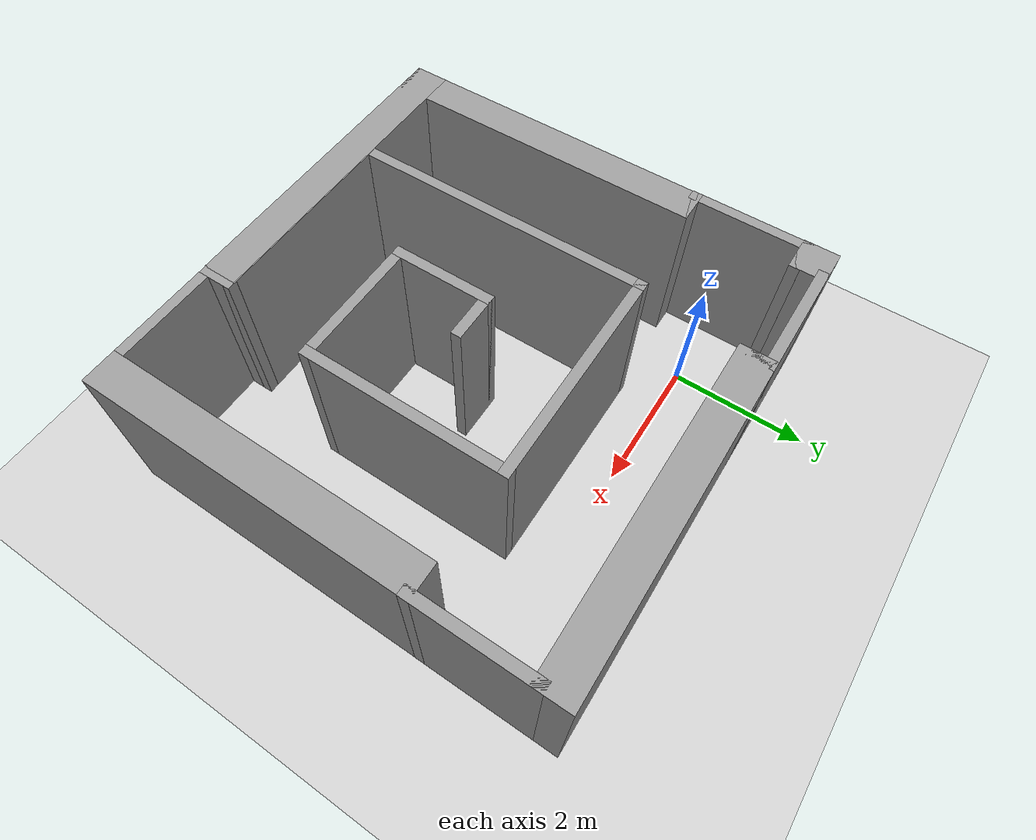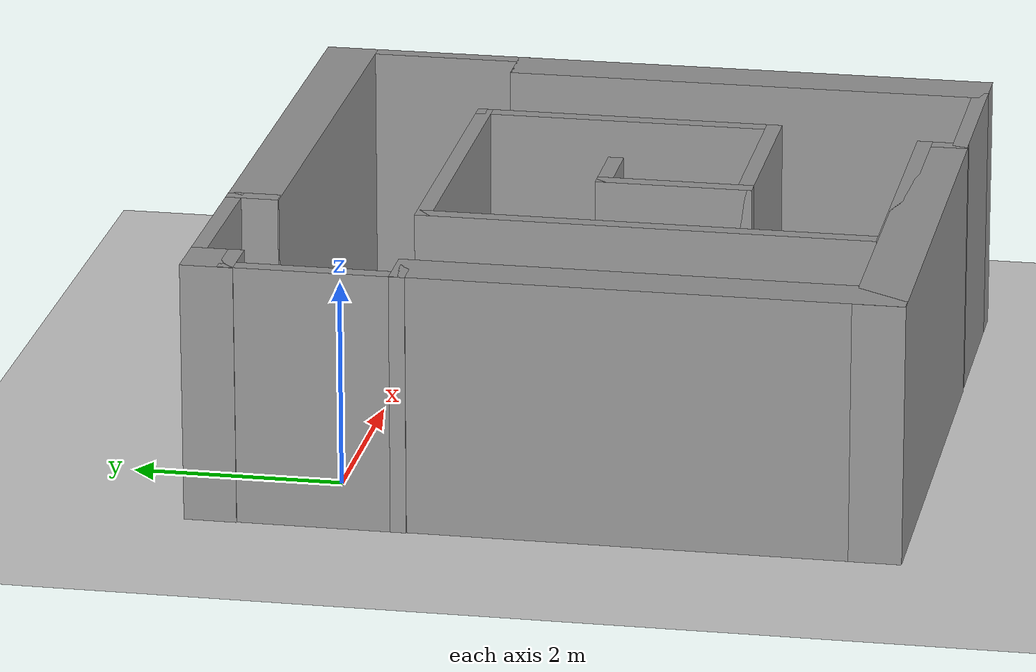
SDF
<sdf version="1.7">
 <world name="default">
  <scene><ambient>0.4 0.4 0.4 1</ambient><background>0.7 0.7 0.7 1</background><shadows>1</shadows></scene>
  <light name="sun" type="directional">
   <pose>0 0 10 0 -0 0</pose>
   <diffuse>0.8 0.8 0.8 1</diffuse>
   <specular>0.2 0.2 0.2 1</specular>
   <attenuation>
    <range>1000</range>
    <constant>0.9</constant>
    <linear>0.01</linear>
    <quadratic>0.001</quadratic>
   </attenuation>
   <direction>-0.5 0.1 -0.9</direction>
   <spot><inner_angle>0</inner_angle><outer_angle>0</outer_angle><falloff>0</falloff></spot>
  </light>
  <model name="ground_plane">
   <static>1</static>
   <link name="link">
    <collision name="collision">
     <geometry><plane><normal>0 0 1</normal><size>100 100</size></plane></geometry>
     <surface>
      <contact><collide_bitmask>65535</collide_bitmask></contact>
      <friction><ode><mu>100</mu><mu2>50</mu2></ode></friction>
     </surface>
    </collision>
    <visual name="visual">
     <cast_shadows>0</cast_shadows>
     <geometry><plane><normal>0 0 1</normal><size>100 100</size></plane></geometry>
     <material>
      <script><uri>file://media/materials/scripts/gazebo.material</uri><name>Gazebo/Grey</name></script>
     </material>
    </visual>
   </link>
  </model>
  <physics type="ode">
   <real_time_update_rate>0</real_time_update_rate>
   <max_step_size>0.001</max_step_size>
   <real_time_factor>1</real_time_factor>
   <ode>
    <solver>
     <type>quick</type>
     <iters>150</iters>
     <precon_iters>0</precon_iters>
     <sor>1.4</sor>
     <use_dynamic_moi_rescaling>1</use_dynamic_moi_rescaling>
    </solver>
    <constraints>
     <cfm>1e-05</cfm>
     <erp>0.2</erp>
     <contact_max_correcting_vel>2000</contact_max_correcting_vel>
     <contact_surface_layer>0.01</contact_surface_layer>
    </constraints>
   </ode>
  </physics>
  <gravity>0 0 -9.8</gravity>
  <magnetic_field>6e-06 2.3e-05 -4.2e-05</magnetic_field>
  <atmosphere type="adiabatic"/>
  <spherical_coordinates>
   <surface_model>EARTH_WGS84</surface_model>
   <latitude_deg>0</latitude_deg>
   <longitude_deg>0</longitude_deg>
   <elevation>0</elevation>
   <heading_deg>0</heading_deg>
  </spherical_coordinates>
  <audio><device>default</device></audio>
  <model name="world1_0">
   <link name="Wall_1">
    <pose>-3.0933 -2.29549 0 0 -0 1.5708</pose>
    <inertial>
     <inertia><ixx>0</ixx><ixy>0</ixy><ixz>0</ixz><iyy>0</iyy><iyz>0</iyz><izz>0</izz></inertia>
     <mass>0</mass>
    </inertial>
    <visual name="Wall_1_Visual">
     <pose>0 0 1.25 0 -0 0</pose>
     <geometry><box><size>4.75 0.494728 2.5</size></box></geometry>
     <material>
      <script><uri>file://media/materials/scripts/gazebo.material</uri><name>Gazebo/Grey</name></script>
      <ambient>1 1 1 1</ambient>
      <shader type="pixel"/>
     </material>
     <meta><layer>0</layer></meta>
    </visual>
    <collision name="Wall_1_Collision">
     <pose>0 0 1.25 0 -0 0</pose>
     <geometry><box><size>4.75 0.494728 2.5</size></box></geometry>
     <surface>
      <friction>
       <ode><mu>1</mu><mu2>1</mu2><fdir1>0 0 0</fdir1><slip1>0</slip1><slip2>0</slip2></ode>
       <torsional>
        <coefficient>1</coefficient>
        <patch_radius>0</patch_radius>
        <surface_radius>0</surface_radius>
        <use_patch_radius>1</use_patch_radius>
        <ode><slip>0</slip></ode>
       </torsional>
      </friction>
      <bounce><restitution_coefficient>0</restitution_coefficient><threshold>1e+06</threshold></bounce>
      <contact>
       <collide_without_contact>0</collide_without_contact>
       <collide_without_contact_bitmask>1</collide_without_contact_bitmask>
       <collide_bitmask>1</collide_bitmask>
       <ode>
        <soft_cfm>0</soft_cfm>
        <soft_erp>0.2</soft_erp>
        <kp>1e+13</kp>
        <kd>1</kd>
        <max_vel>0.01</max_vel>
        <min_depth>0</min_depth>
       </ode>
       <bullet>
        <split_impulse>1</split_impulse>
        <split_impulse_penetration_threshold>-0.01</split_impulse_penetration_threshold>
        <soft_cfm>0</soft_cfm>
        <soft_erp>0.2</soft_erp>
        <kp>1e+13</kp>
        <kd>1</kd>
       </bullet>
      </contact>
     </surface>
    </collision>
   </link>
   <link name="Wall_10">
    <pose>3.1 0.004509 0 0 -0 3.14159</pose>
    <visual name="Wall_10_Visual">
     <pose>0 0 1.25 0 -0 0</pose>
     <geometry><box><size>0.5 0.15 2.5</size></box></geometry>
     <material>
      <script><uri>file://media/materials/scripts/gazebo.material</uri><name>Gazebo/Grey</name></script>
      <ambient>1 1 1 1</ambient>
      <shader type="pixel"/>
     </material>
     <meta><layer>0</layer></meta>
    </visual>
    <collision name="Wall_10_Collision">
     <pose>0 0 1.25 0 -0 0</pose>
     <geometry><box><size>0.5 0.15 2.5</size></box></geometry>
     <surface>
      <friction>
       <ode><mu>1</mu><mu2>1</mu2><fdir1>0 0 0</fdir1><slip1>0</slip1><slip2>0</slip2></ode>
       <torsional>
        <coefficient>1</coefficient>
        <patch_radius>0</patch_radius>
        <surface_radius>0</surface_radius>
        <use_patch_radius>1</use_patch_radius>
        <ode><slip>0</slip></ode>
       </torsional>
      </friction>
      <bounce><restitution_coefficient>0</restitution_coefficient><threshold>1e+06</threshold></bounce>
      <contact>
       <collide_without_contact>0</collide_without_contact>
       <collide_without_contact_bitmask>1</collide_without_contact_bitmask>
       <collide_bitmask>1</collide_bitmask>
       <ode>
        <soft_cfm>0</soft_cfm>
        <soft_erp>0.2</soft_erp>
        <kp>1e+13</kp>
        <kd>1</kd>
        <max_vel>0.01</max_vel>
        <min_depth>0</min_depth>
       </ode>
       <bullet>
        <split_impulse>1</split_impulse>
        <split_impulse_penetration_threshold>-0.01</split_impulse_penetration_threshold>
        <soft_cfm>0</soft_cfm>
        <soft_erp>0.2</soft_erp>
        <kp>1e+13</kp>
        <kd>1</kd>
       </bullet>
      </contact>
     </surface>
    </collision>
   </link>
   <link name="Wall_11">
    <pose>3.09327 -2.29549 0 0 0 -1.5708</pose>
    <inertial>
     <inertia><ixx>0</ixx><ixy>0</ixy><ixz>0</ixz><iyy>0</iyy><iyz>0</iyz><izz>0</izz></inertia>
     <mass>0</mass>
    </inertial>
    <visual name="Wall_11_Visual">
     <pose>0 0 1.25 0 -0 0</pose>
     <geometry><box><size>4.75 0.509769 2.5</size></box></geometry>
     <material>
      <script><uri>file://media/materials/scripts/gazebo.material</uri><name>Gazebo/Grey</name></script>
      <ambient>1 1 1 1</ambient>
      <shader type="pixel"/>
     </material>
     <meta><layer>0</layer></meta>
    </visual>
    <collision name="Wall_11_Collision">
     <pose>0 0 1.25 0 -0 0</pose>
     <geometry><box><size>4.75 0.509769 2.5</size></box></geometry>
     <surface>
      <friction>
       <ode><mu>1</mu><mu2>1</mu2><fdir1>0 0 0</fdir1><slip1>0</slip1><slip2>0</slip2></ode>
       <torsional>
        <coefficient>1</coefficient>
        <patch_radius>0</patch_radius>
        <surface_radius>0</surface_radius>
        <use_patch_radius>1</use_patch_radius>
        <ode><slip>0</slip></ode>
       </torsional>
      </friction>
      <bounce><restitution_coefficient>0</restitution_coefficient><threshold>1e+06</threshold></bounce>
      <contact>
       <collide_without_contact>0</collide_without_contact>
       <collide_without_contact_bitmask>1</collide_without_contact_bitmask>
       <collide_bitmask>1</collide_bitmask>
       <ode>
        <soft_cfm>0</soft_cfm>
        <soft_erp>0.2</soft_erp>
        <kp>1e+13</kp>
        <kd>1</kd>
        <max_vel>0.01</max_vel>
        <min_depth>0</min_depth>
       </ode>
       <bullet>
        <split_impulse>1</split_impulse>
        <split_impulse_penetration_threshold>-0.01</split_impulse_penetration_threshold>
        <soft_cfm>0</soft_cfm>
        <soft_erp>0.2</soft_erp>
        <kp>1e+13</kp>
        <kd>1</kd>
       </bullet>
      </contact>
     </surface>
    </collision>
   </link>
   <link name="Wall_12">
    <pose>2.125 -4.59549 0 0 -0 3.14159</pose>
    <visual name="Wall_12_Visual">
     <pose>0 0 1.25 0 -0 0</pose>
     <geometry><box><size>1.75 0.15 2.5</size></box></geometry>
     <material>
      <script><uri>file://media/materials/scripts/gazebo.material</uri><name>Gazebo/Grey</name></script>
      <ambient>1 1 1 1</ambient>
      <shader type="pixel"/>
     </material>
     <meta><layer>0</layer></meta>
    </visual>
    <collision name="Wall_12_Collision">
     <pose>0 0 1.25 0 -0 0</pose>
     <geometry><box><size>1.75 0.15 2.5</size></box></geometry>
     <surface>
      <friction>
       <ode><mu>1</mu><mu2>1</mu2><fdir1>0 0 0</fdir1><slip1>0</slip1><slip2>0</slip2></ode>
       <torsional>
        <coefficient>1</coefficient>
        <patch_radius>0</patch_radius>
        <surface_radius>0</surface_radius>
        <use_patch_radius>1</use_patch_radius>
        <ode><slip>0</slip></ode>
       </torsional>
      </friction>
      <bounce><restitution_coefficient>0</restitution_coefficient><threshold>1e+06</threshold></bounce>
      <contact>
       <collide_without_contact>0</collide_without_contact>
       <collide_without_contact_bitmask>1</collide_without_contact_bitmask>
       <collide_bitmask>1</collide_bitmask>
       <ode>
        <soft_cfm>0</soft_cfm>
        <soft_erp>0.2</soft_erp>
        <kp>1e+13</kp>
        <kd>1</kd>
        <max_vel>0.01</max_vel>
        <min_depth>0</min_depth>
       </ode>
       <bullet>
        <split_impulse>1</split_impulse>
        <split_impulse_penetration_threshold>-0.01</split_impulse_penetration_threshold>
        <soft_cfm>0</soft_cfm>
        <soft_erp>0.2</soft_erp>
        <kp>1e+13</kp>
        <kd>1</kd>
       </bullet>
      </contact>
     </surface>
    </collision>
   </link>
   <link name="Wall_13">
    <pose>1.325 -4.42049 0 0 -0 1.5708</pose>
    <visual name="Wall_13_Visual">
     <pose>0 0 1.25 0 -0 0</pose>
     <geometry><box><size>0.5 0.15 2.5</size></box></geometry>
     <material>
      <script><uri>file://media/materials/scripts/gazebo.material</uri><name>Gazebo/Grey</name></script>
      <ambient>1 1 1 1</ambient>
      <shader type="pixel"/>
     </material>
     <meta><layer>0</layer></meta>
    </visual>
    <collision name="Wall_13_Collision">
     <pose>0 0 1.25 0 -0 0</pose>
     <geometry><box><size>0.5 0.15 2.5</size></box></geometry>
     <surface>
      <friction>
       <ode><mu>1</mu><mu2>1</mu2><fdir1>0 0 0</fdir1><slip1>0</slip1><slip2>0</slip2></ode>
       <torsional>
        <coefficient>1</coefficient>
        <patch_radius>0</patch_radius>
        <surface_radius>0</surface_radius>
        <use_patch_radius>1</use_patch_radius>
        <ode><slip>0</slip></ode>
       </torsional>
      </friction>
      <bounce><restitution_coefficient>0</restitution_coefficient><threshold>1e+06</threshold></bounce>
      <contact>
       <collide_without_contact>0</collide_without_contact>
       <collide_without_contact_bitmask>1</collide_without_contact_bitmask>
       <collide_bitmask>1</collide_bitmask>
       <ode>
        <soft_cfm>0</soft_cfm>
        <soft_erp>0.2</soft_erp>
        <kp>1e+13</kp>
        <kd>1</kd>
        <max_vel>0.01</max_vel>
        <min_depth>0</min_depth>
       </ode>
       <bullet>
        <split_impulse>1</split_impulse>
        <split_impulse_penetration_threshold>-0.01</split_impulse_penetration_threshold>
        <soft_cfm>0</soft_cfm>
        <soft_erp>0.2</soft_erp>
        <kp>1e+13</kp>
        <kd>1</kd>
       </bullet>
      </contact>
     </surface>
    </collision>
   </link>
   <link name="Wall_14">
    <pose>-0.1 -4.24549 0 0 -0 3.14159</pose>
    <visual name="Wall_14_Visual">
     <pose>0 0 1.25 0 -0 0</pose>
     <geometry><box><size>3 0.15 2.5</size></box></geometry>
     <material>
      <script><uri>file://media/materials/scripts/gazebo.material</uri><name>Gazebo/Grey</name></script>
      <ambient>1 1 1 1</ambient>
      <shader type="pixel"/>
     </material>
     <meta><layer>0</layer></meta>
    </visual>
    <collision name="Wall_14_Collision">
     <pose>0 0 1.25 0 -0 0</pose>
     <geometry><box><size>3 0.15 2.5</size></box></geometry>
     <surface>
      <friction>
       <ode><mu>1</mu><mu2>1</mu2><fdir1>0 0 0</fdir1><slip1>0</slip1><slip2>0</slip2></ode>
       <torsional>
        <coefficient>1</coefficient>
        <patch_radius>0</patch_radius>
        <surface_radius>0</surface_radius>
        <use_patch_radius>1</use_patch_radius>
        <ode><slip>0</slip></ode>
       </torsional>
      </friction>
      <bounce><restitution_coefficient>0</restitution_coefficient><threshold>1e+06</threshold></bounce>
      <contact>
       <collide_without_contact>0</collide_without_contact>
       <collide_without_contact_bitmask>1</collide_without_contact_bitmask>
       <collide_bitmask>1</collide_bitmask>
       <ode>
        <soft_cfm>0</soft_cfm>
        <soft_erp>0.2</soft_erp>
        <kp>1e+13</kp>
        <kd>1</kd>
        <max_vel>0.01</max_vel>
        <min_depth>0</min_depth>
       </ode>
       <bullet>
        <split_impulse>1</split_impulse>
        <split_impulse_penetration_threshold>-0.01</split_impulse_penetration_threshold>
        <soft_cfm>0</soft_cfm>
        <soft_erp>0.2</soft_erp>
        <kp>1e+13</kp>
        <kd>1</kd>
       </bullet>
      </contact>
     </surface>
    </collision>
   </link>
   <link name="Wall_14_clone">
    <pose>-1.02666 -4.42946 0 0 -0 3.14159</pose>
    <inertial>
     <inertia><ixx>0</ixx><ixy>0</ixy><ixz>0</ixz><iyy>0</iyy><iyz>0</iyz><izz>0</izz></inertia>
     <mass>0</mass>
    </inertial>
    <visual name="Wall_14_Visual">
     <pose>0 0 1.25 0 -0 0</pose>
     <geometry><box><size>4.63207 0.493595 2.5</size></box></geometry>
     <material>
      <script><uri>file://media/materials/scripts/gazebo.material</uri><name>Gazebo/Grey</name></script>
      <ambient>1 1 1 1</ambient>
      <shader type="pixel"/>
     </material>
     <meta><layer>0</layer></meta>
    </visual>
    <collision name="Wall_14_Collision">
     <pose>0 0 1.25 0 -0 0</pose>
     <geometry><box><size>4.63207 0.493595 2.5</size></box></geometry>
     <surface>
      <friction>
       <ode><mu>1</mu><mu2>1</mu2><fdir1>0 0 0</fdir1><slip1>0</slip1><slip2>0</slip2></ode>
       <torsional>
        <coefficient>1</coefficient>
        <patch_radius>0</patch_radius>
        <surface_radius>0</surface_radius>
        <use_patch_radius>1</use_patch_radius>
        <ode><slip>0</slip></ode>
       </torsional>
      </friction>
      <bounce><restitution_coefficient>0</restitution_coefficient><threshold>1e+06</threshold></bounce>
      <contact>
       <collide_without_contact>0</collide_without_contact>
       <collide_without_contact_bitmask>1</collide_without_contact_bitmask>
       <collide_bitmask>1</collide_bitmask>
       <ode>
        <soft_cfm>0</soft_cfm>
        <soft_erp>0.2</soft_erp>
        <kp>1e+13</kp>
        <kd>1</kd>
        <max_vel>0.01</max_vel>
        <min_depth>0</min_depth>
       </ode>
       <bullet>
        <split_impulse>1</split_impulse>
        <split_impulse_penetration_threshold>-0.01</split_impulse_penetration_threshold>
        <soft_cfm>0</soft_cfm>
        <soft_erp>0.2</soft_erp>
        <kp>1e+13</kp>
        <kd>1</kd>
       </bullet>
      </contact>
     </surface>
    </collision>
   </link>
   <link name="Wall_15">
    <pose>-1.525 -2.07049 0 0 -0 1.5708</pose>
    <visual name="Wall_15_Visual">
     <pose>0 0 1.25 0 -0 0</pose>
     <geometry><box><size>4.5 0.15 2.5</size></box></geometry>
     <material>
      <script><uri>file://media/materials/scripts/gazebo.material</uri><name>Gazebo/Grey</name></script>
      <ambient>1 1 1 1</ambient>
      <shader type="pixel"/>
     </material>
     <meta><layer>0</layer></meta>
    </visual>
    <collision name="Wall_15_Collision">
     <pose>0 0 1.25 0 -0 0</pose>
     <geometry><box><size>4.5 0.15 2.5</size></box></geometry>
     <surface>
      <friction>
       <ode><mu>1</mu><mu2>1</mu2><fdir1>0 0 0</fdir1><slip1>0</slip1><slip2>0</slip2></ode>
       <torsional>
        <coefficient>1</coefficient>
        <patch_radius>0</patch_radius>
        <surface_radius>0</surface_radius>
        <use_patch_radius>1</use_patch_radius>
        <ode><slip>0</slip></ode>
       </torsional>
      </friction>
      <bounce><restitution_coefficient>0</restitution_coefficient><threshold>1e+06</threshold></bounce>
      <contact>
       <collide_without_contact>0</collide_without_contact>
       <collide_without_contact_bitmask>1</collide_without_contact_bitmask>
       <collide_bitmask>1</collide_bitmask>
       <ode>
        <soft_cfm>0</soft_cfm>
        <soft_erp>0.2</soft_erp>
        <kp>1e+13</kp>
        <kd>1</kd>
        <max_vel>0.01</max_vel>
        <min_depth>0</min_depth>
       </ode>
       <bullet>
        <split_impulse>1</split_impulse>
        <split_impulse_penetration_threshold>-0.01</split_impulse_penetration_threshold>
        <soft_cfm>0</soft_cfm>
        <soft_erp>0.2</soft_erp>
        <kp>1e+13</kp>
        <kd>1</kd>
       </bullet>
      </contact>
     </surface>
    </collision>
   </link>
   <link name="Wall_16">
    <pose>0.025 0.104509 0 0 -0 0</pose>
    <visual name="Wall_16_Visual">
     <pose>0 0 1.25 0 -0 0</pose>
     <geometry><box><size>3.25 0.15 2.5</size></box></geometry>
     <material>
      <script><uri>file://media/materials/scripts/gazebo.material</uri><name>Gazebo/Grey</name></script>
      <ambient>1 1 1 1</ambient>
      <shader type="pixel"/>
     </material>
     <meta><layer>0</layer></meta>
    </visual>
    <collision name="Wall_16_Collision">
     <pose>0 0 1.25 0 -0 0</pose>
     <geometry><box><size>3.25 0.15 2.5</size></box></geometry>
     <surface>
      <friction>
       <ode><mu>1</mu><mu2>1</mu2><fdir1>0 0 0</fdir1><slip1>0</slip1><slip2>0</slip2></ode>
       <torsional>
        <coefficient>1</coefficient>
        <patch_radius>0</patch_radius>
        <surface_radius>0</surface_radius>
        <use_patch_radius>1</use_patch_radius>
        <ode><slip>0</slip></ode>
       </torsional>
      </friction>
      <bounce><restitution_coefficient>0</restitution_coefficient><threshold>1e+06</threshold></bounce>
      <contact>
       <collide_without_contact>0</collide_without_contact>
       <collide_without_contact_bitmask>1</collide_without_contact_bitmask>
       <collide_bitmask>1</collide_bitmask>
       <ode>
        <soft_cfm>0</soft_cfm>
        <soft_erp>0.2</soft_erp>
        <kp>1e+13</kp>
        <kd>1</kd>
        <max_vel>0.01</max_vel>
        <min_depth>0</min_depth>
       </ode>
       <bullet>
        <split_impulse>1</split_impulse>
        <split_impulse_penetration_threshold>-0.01</split_impulse_penetration_threshold>
        <soft_cfm>0</soft_cfm>
        <soft_erp>0.2</soft_erp>
        <kp>1e+13</kp>
        <kd>1</kd>
       </bullet>
      </contact>
     </surface>
    </collision>
   </link>
   <link name="Wall_17">
    <pose>1.575 -1.32049 0 0 0 -1.5708</pose>
    <visual name="Wall_17_Visual">
     <pose>0 0 1.25 0 -0 0</pose>
     <geometry><box><size>3 0.15 2.5</size></box></geometry>
     <material>
      <script><uri>file://media/materials/scripts/gazebo.material</uri><name>Gazebo/Grey</name></script>
      <ambient>1 1 1 1</ambient>
      <shader type="pixel"/>
     </material>
     <meta><layer>0</layer></meta>
    </visual>
    <collision name="Wall_17_Collision">
     <pose>0 0 1.25 0 -0 0</pose>
     <geometry><box><size>3 0.15 2.5</size></box></geometry>
     <surface>
      <friction>
       <ode><mu>1</mu><mu2>1</mu2><fdir1>0 0 0</fdir1><slip1>0</slip1><slip2>0</slip2></ode>
       <torsional>
        <coefficient>1</coefficient>
        <patch_radius>0</patch_radius>
        <surface_radius>0</surface_radius>
        <use_patch_radius>1</use_patch_radius>
        <ode><slip>0</slip></ode>
       </torsional>
      </friction>
      <bounce><restitution_coefficient>0</restitution_coefficient><threshold>1e+06</threshold></bounce>
      <contact>
       <collide_without_contact>0</collide_without_contact>
       <collide_without_contact_bitmask>1</collide_without_contact_bitmask>
       <collide_bitmask>1</collide_bitmask>
       <ode>
        <soft_cfm>0</soft_cfm>
        <soft_erp>0.2</soft_erp>
        <kp>1e+13</kp>
        <kd>1</kd>
        <max_vel>0.01</max_vel>
        <min_depth>0</min_depth>
       </ode>
       <bullet>
        <split_impulse>1</split_impulse>
        <split_impulse_penetration_threshold>-0.01</split_impulse_penetration_threshold>
        <soft_cfm>0</soft_cfm>
        <soft_erp>0.2</soft_erp>
        <kp>1e+13</kp>
        <kd>1</kd>
       </bullet>
      </contact>
     </surface>
    </collision>
   </link>
   <link name="Wall_18">
    <pose>0.65 -2.74549 0 0 -0 3.14159</pose>
    <visual name="Wall_18_Visual">
     <pose>0 0 1.25 0 -0 0</pose>
     <geometry><box><size>2 0.15 2.5</size></box></geometry>
     <material>
      <script><uri>file://media/materials/scripts/gazebo.material</uri><name>Gazebo/Grey</name></script>
      <ambient>1 1 1 1</ambient>
      <shader type="pixel"/>
     </material>
     <meta><layer>0</layer></meta>
    </visual>
    <collision name="Wall_18_Collision">
     <pose>0 0 1.25 0 -0 0</pose>
     <geometry><box><size>2 0.15 2.5</size></box></geometry>
     <surface>
      <friction>
       <ode><mu>1</mu><mu2>1</mu2><fdir1>0 0 0</fdir1><slip1>0</slip1><slip2>0</slip2></ode>
       <torsional>
        <coefficient>1</coefficient>
        <patch_radius>0</patch_radius>
        <surface_radius>0</surface_radius>
        <use_patch_radius>1</use_patch_radius>
        <ode><slip>0</slip></ode>
       </torsional>
      </friction>
      <bounce><restitution_coefficient>0</restitution_coefficient><threshold>1e+06</threshold></bounce>
      <contact>
       <collide_without_contact>0</collide_without_contact>
       <collide_without_contact_bitmask>1</collide_without_contact_bitmask>
       <collide_bitmask>1</collide_bitmask>
       <ode>
        <soft_cfm>0</soft_cfm>
        <soft_erp>0.2</soft_erp>
        <kp>1e+13</kp>
        <kd>1</kd>
        <max_vel>0.01</max_vel>
        <min_depth>0</min_depth>
       </ode>
       <bullet>
        <split_impulse>1</split_impulse>
        <split_impulse_penetration_threshold>-0.01</split_impulse_penetration_threshold>
        <soft_cfm>0</soft_cfm>
        <soft_erp>0.2</soft_erp>
        <kp>1e+13</kp>
        <kd>1</kd>
       </bullet>
      </contact>
     </surface>
    </collision>
   </link>
   <link name="Wall_19">
    <pose>-0.275 -2.07049 0 0 -0 1.5708</pose>
    <visual name="Wall_19_Visual">
     <pose>0 0 1.25 0 -0 0</pose>
     <geometry><box><size>1.5 0.15 2.5</size></box></geometry>
     <material>
      <script><uri>file://media/materials/scripts/gazebo.material</uri><name>Gazebo/Grey</name></script>
      <ambient>1 1 1 1</ambient>
      <shader type="pixel"/>
     </material>
     <meta><layer>0</layer></meta>
    </visual>
    <collision name="Wall_19_Collision">
     <pose>0 0 1.25 0 -0 0</pose>
     <geometry><box><size>1.5 0.15 2.5</size></box></geometry>
     <surface>
      <friction>
       <ode><mu>1</mu><mu2>1</mu2><fdir1>0 0 0</fdir1><slip1>0</slip1><slip2>0</slip2></ode>
       <torsional>
        <coefficient>1</coefficient>
        <patch_radius>0</patch_radius>
        <surface_radius>0</surface_radius>
        <use_patch_radius>1</use_patch_radius>
        <ode><slip>0</slip></ode>
       </torsional>
      </friction>
      <bounce><restitution_coefficient>0</restitution_coefficient><threshold>1e+06</threshold></bounce>
      <contact>
       <collide_without_contact>0</collide_without_contact>
       <collide_without_contact_bitmask>1</collide_without_contact_bitmask>
       <collide_bitmask>1</collide_bitmask>
       <ode>
        <soft_cfm>0</soft_cfm>
        <soft_erp>0.2</soft_erp>
        <kp>1e+13</kp>
        <kd>1</kd>
        <max_vel>0.01</max_vel>
        <min_depth>0</min_depth>
       </ode>
       <bullet>
        <split_impulse>1</split_impulse>
        <split_impulse_penetration_threshold>-0.01</split_impulse_penetration_threshold>
        <soft_cfm>0</soft_cfm>
        <soft_erp>0.2</soft_erp>
        <kp>1e+13</kp>
        <kd>1</kd>
       </bullet>
      </contact>
     </surface>
    </collision>
   </link>
   <link name="Wall_2">
    <pose>-3.1 0.004509 0 0 -0 3.14159</pose>
    <visual name="Wall_2_Visual">
     <pose>0 0 1.25 0 -0 0</pose>
     <geometry><box><size>0.5 0.15 2.5</size></box></geometry>
     <material>
      <script><uri>file://media/materials/scripts/gazebo.material</uri><name>Gazebo/Grey</name></script>
      <ambient>1 1 1 1</ambient>
      <shader type="pixel"/>
     </material>
     <meta><layer>0</layer></meta>
    </visual>
    <collision name="Wall_2_Collision">
     <pose>0 0 1.25 0 -0 0</pose>
     <geometry><box><size>0.5 0.15 2.5</size></box></geometry>
     <surface>
      <friction>
       <ode><mu>1</mu><mu2>1</mu2><fdir1>0 0 0</fdir1><slip1>0</slip1><slip2>0</slip2></ode>
       <torsional>
        <coefficient>1</coefficient>
        <patch_radius>0</patch_radius>
        <surface_radius>0</surface_radius>
        <use_patch_radius>1</use_patch_radius>
        <ode><slip>0</slip></ode>
       </torsional>
      </friction>
      <bounce><restitution_coefficient>0</restitution_coefficient><threshold>1e+06</threshold></bounce>
      <contact>
       <collide_without_contact>0</collide_without_contact>
       <collide_without_contact_bitmask>1</collide_without_contact_bitmask>
       <collide_bitmask>1</collide_bitmask>
       <ode>
        <soft_cfm>0</soft_cfm>
        <soft_erp>0.2</soft_erp>
        <kp>1e+13</kp>
        <kd>1</kd>
        <max_vel>0.01</max_vel>
        <min_depth>0</min_depth>
       </ode>
       <bullet>
        <split_impulse>1</split_impulse>
        <split_impulse_penetration_threshold>-0.01</split_impulse_penetration_threshold>
        <soft_cfm>0</soft_cfm>
        <soft_erp>0.2</soft_erp>
        <kp>1e+13</kp>
        <kd>1</kd>
       </bullet>
      </contact>
     </surface>
    </collision>
   </link>
   <link name="Wall_20">
    <pose>0.025 -1.39549 0 0 -0 0</pose>
    <visual name="Wall_20_Visual">
     <pose>0 0 1.25 0 -0 0</pose>
     <geometry><box><size>0.75 0.15 2.5</size></box></geometry>
     <material>
      <script><uri>file://media/materials/scripts/gazebo.material</uri><name>Gazebo/Grey</name></script>
      <ambient>1 1 1 1</ambient>
      <shader type="pixel"/>
     </material>
     <meta><layer>0</layer></meta>
    </visual>
    <collision name="Wall_20_Collision">
     <pose>0 0 1.25 0 -0 0</pose>
     <geometry><box><size>0.75 0.15 2.5</size></box></geometry>
     <surface>
      <friction>
       <ode><mu>1</mu><mu2>1</mu2><fdir1>0 0 0</fdir1><slip1>0</slip1><slip2>0</slip2></ode>
       <torsional>
        <coefficient>1</coefficient>
        <patch_radius>0</patch_radius>
        <surface_radius>0</surface_radius>
        <use_patch_radius>1</use_patch_radius>
        <ode><slip>0</slip></ode>
       </torsional>
      </friction>
      <bounce><restitution_coefficient>0</restitution_coefficient><threshold>1e+06</threshold></bounce>
      <contact>
       <collide_without_contact>0</collide_without_contact>
       <collide_without_contact_bitmask>1</collide_without_contact_bitmask>
       <collide_bitmask>1</collide_bitmask>
       <ode>
        <soft_cfm>0</soft_cfm>
        <soft_erp>0.2</soft_erp>
        <kp>1e+13</kp>
        <kd>1</kd>
        <max_vel>0.01</max_vel>
        <min_depth>0</min_depth>
       </ode>
       <bullet>
        <split_impulse>1</split_impulse>
        <split_impulse_penetration_threshold>-0.01</split_impulse_penetration_threshold>
        <soft_cfm>0</soft_cfm>
        <soft_erp>0.2</soft_erp>
        <kp>1e+13</kp>
        <kd>1</kd>
       </bullet>
      </contact>
     </surface>
    </collision>
   </link>
   <link name="Wall_3">
    <pose>-3.275 0.804509 0 0 -0 1.5708</pose>
    <visual name="Wall_3_Visual">
     <pose>0 0 1.25 0 -0 0</pose>
     <geometry><box><size>1.75 0.15 2.5</size></box></geometry>
     <material>
      <script><uri>file://media/materials/scripts/gazebo.material</uri><name>Gazebo/Grey</name></script>
      <ambient>1 1 1 1</ambient>
      <shader type="pixel"/>
     </material>
     <meta><layer>0</layer></meta>
    </visual>
    <collision name="Wall_3_Collision">
     <pose>0 0 1.25 0 -0 0</pose>
     <geometry><box><size>1.75 0.15 2.5</size></box></geometry>
     <surface>
      <friction>
       <ode><mu>1</mu><mu2>1</mu2><fdir1>0 0 0</fdir1><slip1>0</slip1><slip2>0</slip2></ode>
       <torsional>
        <coefficient>1</coefficient>
        <patch_radius>0</patch_radius>
        <surface_radius>0</surface_radius>
        <use_patch_radius>1</use_patch_radius>
        <ode><slip>0</slip></ode>
       </torsional>
      </friction>
      <bounce><restitution_coefficient>0</restitution_coefficient><threshold>1e+06</threshold></bounce>
      <contact>
       <collide_without_contact>0</collide_without_contact>
       <collide_without_contact_bitmask>1</collide_without_contact_bitmask>
       <collide_bitmask>1</collide_bitmask>
       <ode>
        <soft_cfm>0</soft_cfm>
        <soft_erp>0.2</soft_erp>
        <kp>1e+13</kp>
        <kd>1</kd>
        <max_vel>0.01</max_vel>
        <min_depth>0</min_depth>
       </ode>
       <bullet>
        <split_impulse>1</split_impulse>
        <split_impulse_penetration_threshold>-0.01</split_impulse_penetration_threshold>
        <soft_cfm>0</soft_cfm>
        <soft_erp>0.2</soft_erp>
        <kp>1e+13</kp>
        <kd>1</kd>
       </bullet>
      </contact>
     </surface>
    </collision>
   </link>
   <link name="Wall_4">
    <pose>-3.1 1.60451 0 0 -0 0</pose>
    <visual name="Wall_4_Visual">
     <pose>0 0 1.25 0 -0 0</pose>
     <geometry><box><size>0.5 0.15 2.5</size></box></geometry>
     <material>
      <script><uri>file://media/materials/scripts/gazebo.material</uri><name>Gazebo/Grey</name></script>
      <ambient>1 1 1 1</ambient>
      <shader type="pixel"/>
     </material>
     <meta><layer>0</layer></meta>
    </visual>
    <collision name="Wall_4_Collision">
     <pose>0 0 1.25 0 -0 0</pose>
     <geometry><box><size>0.5 0.15 2.5</size></box></geometry>
     <surface>
      <friction>
       <ode><mu>1</mu><mu2>1</mu2><fdir1>0 0 0</fdir1><slip1>0</slip1><slip2>0</slip2></ode>
       <torsional>
        <coefficient>1</coefficient>
        <patch_radius>0</patch_radius>
        <surface_radius>0</surface_radius>
        <use_patch_radius>1</use_patch_radius>
        <ode><slip>0</slip></ode>
       </torsional>
      </friction>
      <bounce><restitution_coefficient>0</restitution_coefficient><threshold>1e+06</threshold></bounce>
      <contact>
       <collide_without_contact>0</collide_without_contact>
       <collide_without_contact_bitmask>1</collide_without_contact_bitmask>
       <collide_bitmask>1</collide_bitmask>
       <ode>
        <soft_cfm>0</soft_cfm>
        <soft_erp>0.2</soft_erp>
        <kp>1e+13</kp>
        <kd>1</kd>
        <max_vel>0.01</max_vel>
        <min_depth>0</min_depth>
       </ode>
       <bullet>
        <split_impulse>1</split_impulse>
        <split_impulse_penetration_threshold>-0.01</split_impulse_penetration_threshold>
        <soft_cfm>0</soft_cfm>
        <soft_erp>0.2</soft_erp>
        <kp>1e+13</kp>
        <kd>1</kd>
       </bullet>
      </contact>
     </surface>
    </collision>
   </link>
   <link name="Wall_5">
    <pose>-3.10677 1.77951 0 0 -0 1.5708</pose>
    <inertial>
     <inertia><ixx>0</ixx><ixy>0</ixy><ixz>0</ixz><iyy>0</iyy><iyz>0</iyz><izz>0</izz></inertia>
     <mass>0</mass>
    </inertial>
    <visual name="Wall_5_Visual">
     <pose>0 0 1.25 0 -0 0</pose>
     <geometry><box><size>0.5 0.505854 2.5</size></box></geometry>
     <material>
      <script><uri>file://media/materials/scripts/gazebo.material</uri><name>Gazebo/Grey</name></script>
      <ambient>1 1 1 1</ambient>
      <shader type="pixel"/>
     </material>
     <meta><layer>0</layer></meta>
    </visual>
    <collision name="Wall_5_Collision">
     <pose>0 0 1.25 0 -0 0</pose>
     <geometry><box><size>0.5 0.505854 2.5</size></box></geometry>
     <surface>
      <friction>
       <ode><mu>1</mu><mu2>1</mu2><fdir1>0 0 0</fdir1><slip1>0</slip1><slip2>0</slip2></ode>
       <torsional>
        <coefficient>1</coefficient>
        <patch_radius>0</patch_radius>
        <surface_radius>0</surface_radius>
        <use_patch_radius>1</use_patch_radius>
        <ode><slip>0</slip></ode>
       </torsional>
      </friction>
      <bounce><restitution_coefficient>0</restitution_coefficient><threshold>1e+06</threshold></bounce>
      <contact>
       <collide_without_contact>0</collide_without_contact>
       <collide_without_contact_bitmask>1</collide_without_contact_bitmask>
       <collide_bitmask>1</collide_bitmask>
       <ode>
        <soft_cfm>0</soft_cfm>
        <soft_erp>0.2</soft_erp>
        <kp>1e+13</kp>
        <kd>1</kd>
        <max_vel>0.01</max_vel>
        <min_depth>0</min_depth>
       </ode>
       <bullet>
        <split_impulse>1</split_impulse>
        <split_impulse_penetration_threshold>-0.01</split_impulse_penetration_threshold>
        <soft_cfm>0</soft_cfm>
        <soft_erp>0.2</soft_erp>
        <kp>1e+13</kp>
        <kd>1</kd>
       </bullet>
      </contact>
     </surface>
    </collision>
   </link>
   <link name="Wall_6">
    <pose>-2.125 1.95451 0 0 -0 0</pose>
    <visual name="Wall_6_Visual">
     <pose>0 0 1.25 0 -0 0</pose>
     <geometry><box><size>1.75 0.15 2.5</size></box></geometry>
     <material>
      <script><uri>file://media/materials/scripts/gazebo.material</uri><name>Gazebo/Grey</name></script>
      <ambient>1 1 1 1</ambient>
      <shader type="pixel"/>
     </material>
     <meta><layer>0</layer></meta>
    </visual>
    <collision name="Wall_6_Collision">
     <pose>0 0 1.25 0 -0 0</pose>
     <geometry><box><size>1.75 0.15 2.5</size></box></geometry>
     <surface>
      <friction>
       <ode><mu>1</mu><mu2>1</mu2><fdir1>0 0 0</fdir1><slip1>0</slip1><slip2>0</slip2></ode>
       <torsional>
        <coefficient>1</coefficient>
        <patch_radius>0</patch_radius>
        <surface_radius>0</surface_radius>
        <use_patch_radius>1</use_patch_radius>
        <ode><slip>0</slip></ode>
       </torsional>
      </friction>
      <bounce><restitution_coefficient>0</restitution_coefficient><threshold>1e+06</threshold></bounce>
      <contact>
       <collide_without_contact>0</collide_without_contact>
       <collide_without_contact_bitmask>1</collide_without_contact_bitmask>
       <collide_bitmask>1</collide_bitmask>
       <ode>
        <soft_cfm>0</soft_cfm>
        <soft_erp>0.2</soft_erp>
        <kp>1e+13</kp>
        <kd>1</kd>
        <max_vel>0.01</max_vel>
        <min_depth>0</min_depth>
       </ode>
       <bullet>
        <split_impulse>1</split_impulse>
        <split_impulse_penetration_threshold>-0.01</split_impulse_penetration_threshold>
        <soft_cfm>0</soft_cfm>
        <soft_erp>0.2</soft_erp>
        <kp>1e+13</kp>
        <kd>1</kd>
       </bullet>
      </contact>
     </surface>
    </collision>
   </link>
   <link name="Wall_7">
    <pose>-1.325 1.77951 0 0 0 -1.5708</pose>
    <visual name="Wall_7_Visual">
     <pose>0 0 1.25 0 -0 0</pose>
     <geometry><box><size>0.5 0.15 2.5</size></box></geometry>
     <material>
      <script><uri>file://media/materials/scripts/gazebo.material</uri><name>Gazebo/Grey</name></script>
      <ambient>1 1 1 1</ambient>
      <shader type="pixel"/>
     </material>
     <meta><layer>0</layer></meta>
    </visual>
    <collision name="Wall_7_Collision">
     <pose>0 0 1.25 0 -0 0</pose>
     <geometry><box><size>0.5 0.15 2.5</size></box></geometry>
     <surface>
      <friction>
       <ode><mu>1</mu><mu2>1</mu2><fdir1>0 0 0</fdir1><slip1>0</slip1><slip2>0</slip2></ode>
       <torsional>
        <coefficient>1</coefficient>
        <patch_radius>0</patch_radius>
        <surface_radius>0</surface_radius>
        <use_patch_radius>1</use_patch_radius>
        <ode><slip>0</slip></ode>
       </torsional>
      </friction>
      <bounce><restitution_coefficient>0</restitution_coefficient><threshold>1e+06</threshold></bounce>
      <contact>
       <collide_without_contact>0</collide_without_contact>
       <collide_without_contact_bitmask>1</collide_without_contact_bitmask>
       <collide_bitmask>1</collide_bitmask>
       <ode>
        <soft_cfm>0</soft_cfm>
        <soft_erp>0.2</soft_erp>
        <kp>1e+13</kp>
        <kd>1</kd>
        <max_vel>0.01</max_vel>
        <min_depth>0</min_depth>
       </ode>
       <bullet>
        <split_impulse>1</split_impulse>
        <split_impulse_penetration_threshold>-0.01</split_impulse_penetration_threshold>
        <soft_cfm>0</soft_cfm>
        <soft_erp>0.2</soft_erp>
        <kp>1e+13</kp>
        <kd>1</kd>
       </bullet>
      </contact>
     </surface>
    </collision>
   </link>
   <link name="Wall_8">
    <pose>0.975 1.77282 0 0 -0 0</pose>
    <inertial>
     <inertia><ixx>0</ixx><ixy>0</ixy><ixz>0</ixz><iyy>0</iyy><iyz>0</iyz><izz>0</izz></inertia>
     <mass>0</mass>
    </inertial>
    <visual name="Wall_8_Visual">
     <pose>0 0 1.25 0 -0 0</pose>
     <geometry><box><size>4.75 0.510539 2.5</size></box></geometry>
     <material>
      <script><uri>file://media/materials/scripts/gazebo.material</uri><name>Gazebo/Grey</name></script>
      <ambient>1 1 1 1</ambient>
      <shader type="pixel"/>
     </material>
     <meta><layer>0</layer></meta>
    </visual>
    <collision name="Wall_8_Collision">
     <pose>0 0 1.25 0 -0 0</pose>
     <geometry><box><size>4.75 0.510539 2.5</size></box></geometry>
     <surface>
      <friction>
       <ode><mu>1</mu><mu2>1</mu2><fdir1>0 0 0</fdir1><slip1>0</slip1><slip2>0</slip2></ode>
       <torsional>
        <coefficient>1</coefficient>
        <patch_radius>0</patch_radius>
        <surface_radius>0</surface_radius>
        <use_patch_radius>1</use_patch_radius>
        <ode><slip>0</slip></ode>
       </torsional>
      </friction>
      <bounce><restitution_coefficient>0</restitution_coefficient><threshold>1e+06</threshold></bounce>
      <contact>
       <collide_without_contact>0</collide_without_contact>
       <collide_without_contact_bitmask>1</collide_without_contact_bitmask>
       <collide_bitmask>1</collide_bitmask>
       <ode>
        <soft_cfm>0</soft_cfm>
        <soft_erp>0.2</soft_erp>
        <kp>1e+13</kp>
        <kd>1</kd>
        <max_vel>0.01</max_vel>
        <min_depth>0</min_depth>
       </ode>
       <bullet>
        <split_impulse>1</split_impulse>
        <split_impulse_penetration_threshold>-0.01</split_impulse_penetration_threshold>
        <soft_cfm>0</soft_cfm>
        <soft_erp>0.2</soft_erp>
        <kp>1e+13</kp>
        <kd>1</kd>
       </bullet>
      </contact>
     </surface>
    </collision>
   </link>
   <link name="Wall_9">
    <pose>3.275 0.804509 0 0 0 -1.5708</pose>
    <visual name="Wall_9_Visual">
     <pose>0 0 1.25 0 -0 0</pose>
     <geometry><box><size>1.75 0.15 2.5</size></box></geometry>
     <material>
      <script><uri>file://media/materials/scripts/gazebo.material</uri><name>Gazebo/Grey</name></script>
      <ambient>1 1 1 1</ambient>
      <shader type="pixel"/>
     </material>
     <meta><layer>0</layer></meta>
    </visual>
    <collision name="Wall_9_Collision">
     <pose>0 0 1.25 0 -0 0</pose>
     <geometry><box><size>1.75 0.15 2.5</size></box></geometry>
     <surface>
      <friction>
       <ode><mu>1</mu><mu2>1</mu2><fdir1>0 0 0</fdir1><slip1>0</slip1><slip2>0</slip2></ode>
       <torsional>
        <coefficient>1</coefficient>
        <patch_radius>0</patch_radius>
        <surface_radius>0</surface_radius>
        <use_patch_radius>1</use_patch_radius>
        <ode><slip>0</slip></ode>
       </torsional>
      </friction>
      <bounce><restitution_coefficient>0</restitution_coefficient><threshold>1e+06</threshold></bounce>
      <contact>
       <collide_without_contact>0</collide_without_contact>
       <collide_without_contact_bitmask>1</collide_without_contact_bitmask>
       <collide_bitmask>1</collide_bitmask>
       <ode>
        <soft_cfm>0</soft_cfm>
        <soft_erp>0.2</soft_erp>
        <kp>1e+13</kp>
        <kd>1</kd>
        <max_vel>0.01</max_vel>
        <min_depth>0</min_depth>
       </ode>
       <bullet>
        <split_impulse>1</split_impulse>
        <split_impulse_penetration_threshold>-0.01</split_impulse_penetration_threshold>
        <soft_cfm>0</soft_cfm>
        <soft_erp>0.2</soft_erp>
        <kp>1e+13</kp>
        <kd>1</kd>
       </bullet>
      </contact>
     </surface>
    </collision>
   </link>
   <static>1</static>
   <pose>2.20172 -0.769814 0 0 -0 0</pose>
  </model>
 </world>
</sdf>
